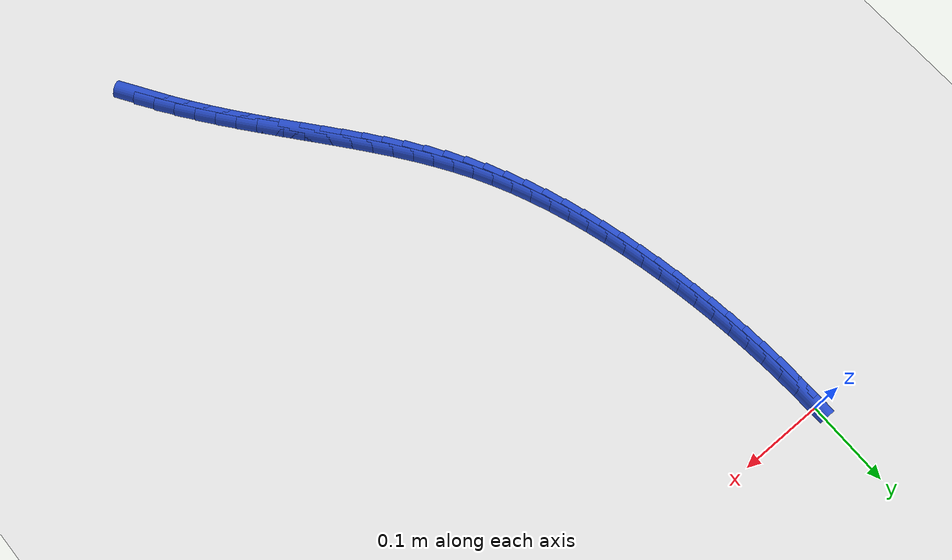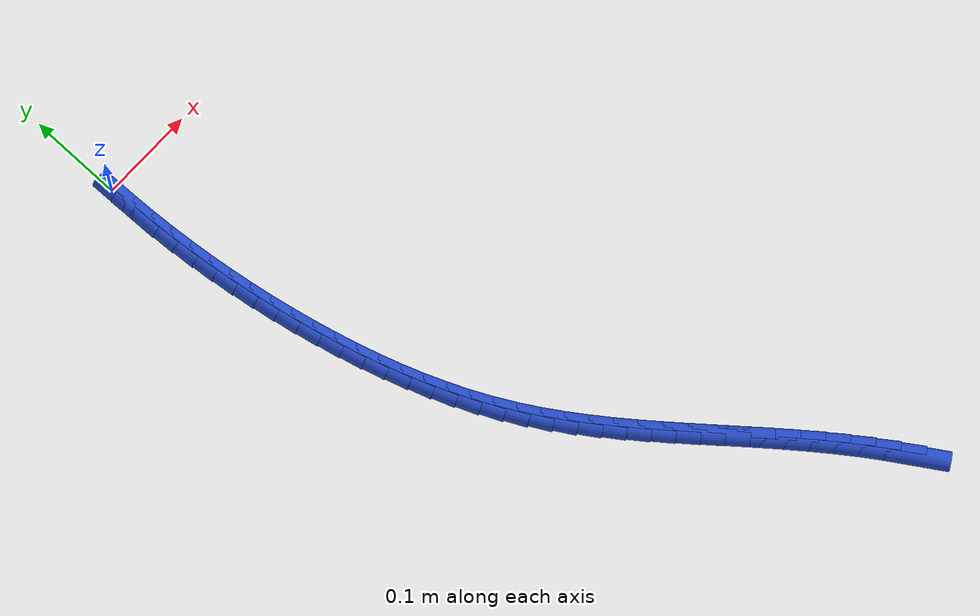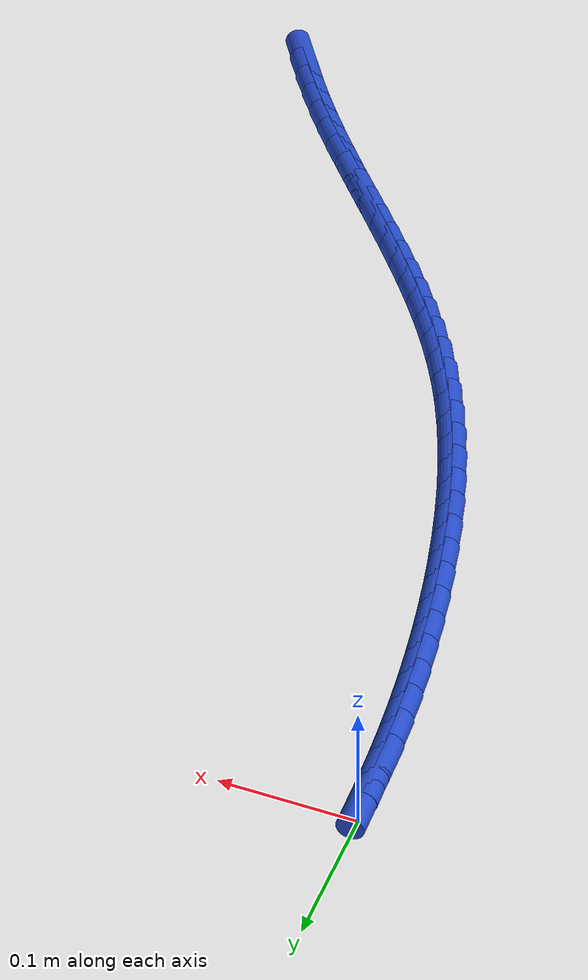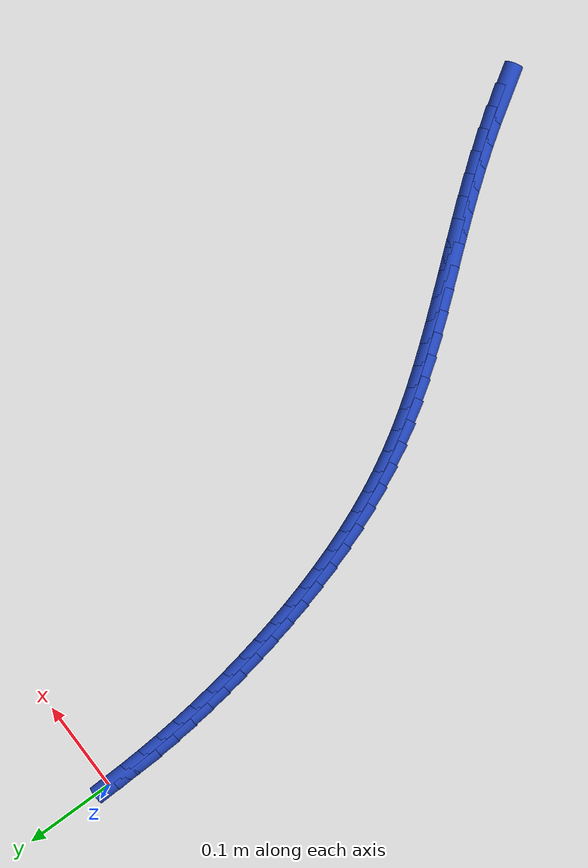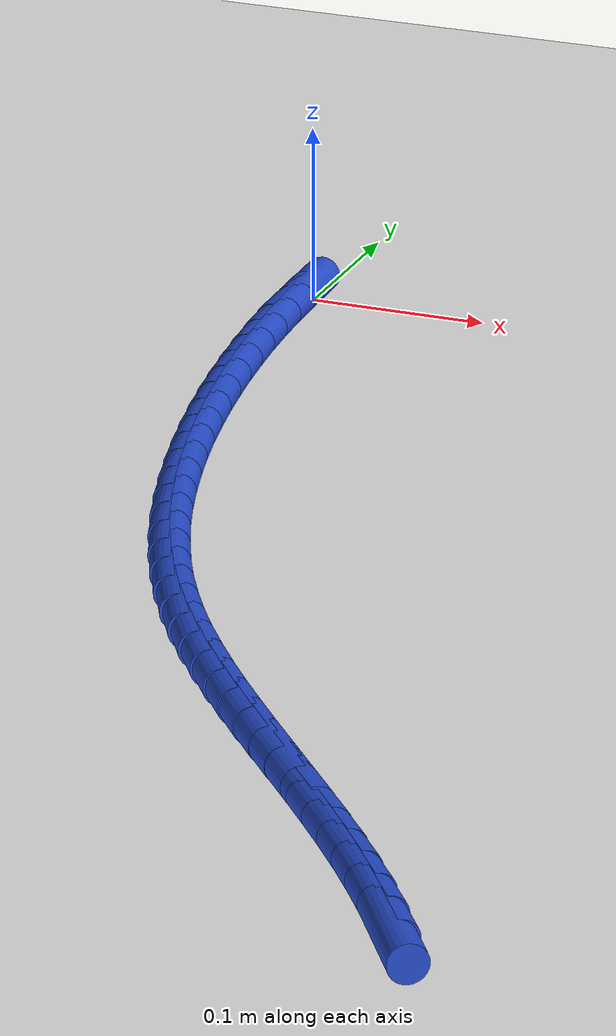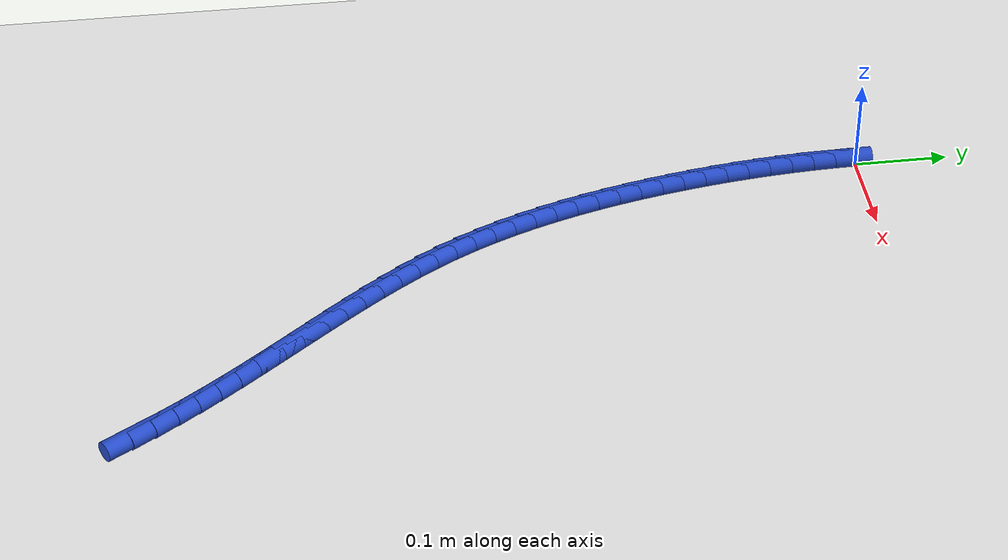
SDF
<sdf version="1.6">
 <world name="default">
  <model name="ground_plane">
   <static>1</static>
   <link name="link">
    <collision name="collision">
     <geometry><plane><normal>0 0 1</normal><size>100 100</size></plane></geometry>
     <surface><friction><ode><mu>100</mu><mu2>50</mu2></ode></friction></surface>
    </collision>
    <visual name="visual">
     <cast_shadows>0</cast_shadows>
     <geometry><plane><normal>0 0 1</normal><size>100 100</size></plane></geometry>
     <material>
      <script><uri>file://media/materials/scripts/gazebo.material</uri><name>Gazebo/WhiteGlow</name></script>
     </material>
    </visual>
   </link>
  </model>
  <model name="line">
   <link name="link_245">
    <pose>0.33461807545409006 -0.753957638538432 0.01 0 1.57 -1.0003960153693385</pose>
    <collision name="collision">
     <geometry><cylinder><radius>0.01</radius><length>0.08</length></cylinder></geometry>
    </collision>
    <visual name="visual">
     <material>
      <script><name>Gazebo/Blue</name><uri>file://media/materials/scripts/gazebo.material</uri></script>
     </material>
     <geometry><cylinder><radius>0.01</radius><length>0.08</length></cylinder></geometry>
    </visual>
   </link>
   <link name="link_246">
    <pose>0.3211450676972649 -0.7329563839854623 0.01 0 1.57 -0.9698250624632055</pose>
    <collision name="collision">
     <geometry><cylinder><radius>0.01</radius><length>0.08</length></cylinder></geometry>
    </collision>
    <visual name="visual">
     <material>
      <script><name>Gazebo/Blue</name><uri>file://media/materials/scripts/gazebo.material</uri></script>
     </material>
     <geometry><cylinder><radius>0.01</radius><length>0.08</length></cylinder></geometry>
    </visual>
   </link>
   <link name="link_247">
    <pose>0.3071308548040017 -0.7125144985209205 0.01 0 1.57 -0.9435868613721403</pose>
    <collision name="collision">
     <geometry><cylinder><radius>0.01</radius><length>0.08</length></cylinder></geometry>
    </collision>
    <visual name="visual">
     <material>
      <script><name>Gazebo/Blue</name><uri>file://media/materials/scripts/gazebo.material</uri></script>
     </material>
     <geometry><cylinder><radius>0.01</radius><length>0.08</length></cylinder></geometry>
    </visual>
   </link>
   <link name="link_248">
    <pose>0.2926652224624972 -0.6925577564326911 0.01 0 1.57 -0.9218202748787302</pose>
    <collision name="collision">
     <geometry><cylinder><radius>0.01</radius><length>0.08</length></cylinder></geometry>
    </collision>
    <visual name="visual">
     <material>
      <script><name>Gazebo/Blue</name><uri>file://media/materials/scripts/gazebo.material</uri></script>
     </material>
     <geometry><cylinder><radius>0.01</radius><length>0.08</length></cylinder></geometry>
    </visual>
   </link>
   <link name="link_249">
    <pose>0.2778379563609487 -0.6730119320086584 0.01 0 1.57 -0.9046267730776741</pose>
    <collision name="collision">
     <geometry><cylinder><radius>0.01</radius><length>0.08</length></cylinder></geometry>
    </collision>
    <visual name="visual">
     <material>
      <script><name>Gazebo/Blue</name><uri>file://media/materials/scripts/gazebo.material</uri></script>
     </material>
     <geometry><cylinder><radius>0.01</radius><length>0.08</length></cylinder></geometry>
    </visual>
   </link>
   <link name="link_250">
    <pose>0.262738842187553 -0.6538027995367072 0.01 0 1.57 -0.8920824447750025</pose>
    <collision name="collision">
     <geometry><cylinder><radius>0.01</radius><length>0.08</length></cylinder></geometry>
    </collision>
    <visual name="visual">
     <material>
      <script><name>Gazebo/Blue</name><uri>file://media/materials/scripts/gazebo.material</uri></script>
     </material>
     <geometry><cylinder><radius>0.01</radius><length>0.08</length></cylinder></geometry>
    </visual>
   </link>
   <link name="link_251">
    <pose>0.24745766563050722 -0.6348561333047213 0.01 0 1.57 -0.8842482742643495</pose>
    <collision name="collision">
     <geometry><cylinder><radius>0.01</radius><length>0.08</length></cylinder></geometry>
    </collision>
    <visual name="visual">
     <material>
      <script><name>Gazebo/Blue</name><uri>file://media/materials/scripts/gazebo.material</uri></script>
     </material>
     <geometry><cylinder><radius>0.01</radius><length>0.08</length></cylinder></geometry>
    </visual>
   </link>
   <link name="link_252">
    <pose>0.232084212378008 -0.6160977076005852 0.01 0 1.57 -0.8811780504047283</pose>
    <collision name="collision">
     <geometry><cylinder><radius>0.01</radius><length>0.08</length></cylinder></geometry>
    </collision>
    <visual name="visual">
     <material>
      <script><name>Gazebo/Blue</name><uri>file://media/materials/scripts/gazebo.material</uri></script>
     </material>
     <geometry><cylinder><radius>0.01</radius><length>0.08</length></cylinder></geometry>
    </visual>
   </link>
   <link name="link_253">
    <pose>0.21670826811825333 -0.5974532967121847 0.01 0 1.57 -0.8829234966853551</pose>
    <collision name="collision">
     <geometry><cylinder><radius>0.01</radius><length>0.08</length></cylinder></geometry>
    </collision>
    <visual name="visual">
     <material>
      <script><name>Gazebo/Blue</name><uri>file://media/materials/scripts/gazebo.material</uri></script>
     </material>
     <geometry><cylinder><radius>0.01</radius><length>0.08</length></cylinder></geometry>
    </visual>
   </link>
   <link name="link_254">
    <pose>0.20141961853943974 -0.5788486749274034 0.01 0 1.57 -0.8895363266488321</pose>
    <collision name="collision">
     <geometry><cylinder><radius>0.01</radius><length>0.08</length></cylinder></geometry>
    </collision>
    <visual name="visual">
     <material>
      <script><name>Gazebo/Blue</name><uri>file://media/materials/scripts/gazebo.material</uri></script>
     </material>
     <geometry><cylinder><radius>0.01</radius><length>0.08</length></cylinder></geometry>
    </visual>
   </link>
   <link name="link_255">
    <pose>0.18630804932976427 -0.5602096165341259 0.01 0 1.57 -0.9010669677642063</pose>
    <collision name="collision">
     <geometry><cylinder><radius>0.01</radius><length>0.08</length></cylinder></geometry>
    </collision>
    <visual name="visual">
     <material>
      <script><name>Gazebo/Blue</name><uri>file://media/materials/scripts/gazebo.material</uri></script>
     </material>
     <geometry><cylinder><radius>0.01</radius><length>0.08</length></cylinder></geometry>
    </visual>
   </link>
   <link name="link_256">
    <pose>0.17146334617742395 -0.5414618958202366 0.01 0 1.57 -0.9175597038424402</pose>
    <collision name="collision">
     <geometry><cylinder><radius>0.01</radius><length>0.08</length></cylinder></geometry>
    </collision>
    <visual name="visual">
     <material>
      <script><name>Gazebo/Blue</name><uri>file://media/materials/scripts/gazebo.material</uri></script>
     </material>
     <geometry><cylinder><radius>0.01</radius><length>0.08</length></cylinder></geometry>
    </visual>
   </link>
   <link name="link_257">
    <pose>0.15697529477061592 -0.5225312870736202 0.01 0 1.57 -0.9390440189941259</pose>
    <collision name="collision">
     <geometry><cylinder><radius>0.01</radius><length>0.08</length></cylinder></geometry>
    </collision>
    <visual name="visual">
     <material>
      <script><name>Gazebo/Blue</name><uri>file://media/materials/scripts/gazebo.material</uri></script>
     </material>
     <geometry><cylinder><radius>0.01</radius><length>0.08</length></cylinder></geometry>
    </visual>
   </link>
   <link name="link_258">
    <pose>0.14293368079753718 -0.5033435645821612 0.01 0 1.57 -0.9655220534444666</pose>
    <collision name="collision">
     <geometry><cylinder><radius>0.01</radius><length>0.08</length></cylinder></geometry>
    </collision>
    <visual name="visual">
     <material>
      <script><name>Gazebo/Blue</name><uri>file://media/materials/scripts/gazebo.material</uri></script>
     </material>
     <geometry><cylinder><radius>0.01</radius><length>0.08</length></cylinder></geometry>
    </visual>
   </link>
   <link name="link_259">
    <pose>0.12942828994638472 -0.4838245026337439 0.01 0 1.57 -0.9969523778217195</pose>
    <collision name="collision">
     <geometry><cylinder><radius>0.01</radius><length>0.08</length></cylinder></geometry>
    </collision>
    <visual name="visual">
     <material>
      <script><name>Gazebo/Blue</name><uri>file://media/materials/scripts/gazebo.material</uri></script>
     </material>
     <geometry><cylinder><radius>0.01</radius><length>0.08</length></cylinder></geometry>
    </visual>
   </link>
   <link name="link_260">
    <pose>0.11654890790535563 -0.463899875516253 0.01 0 1.57 -1.0332308231151857</pose>
    <collision name="collision">
     <geometry><cylinder><radius>0.01</radius><length>0.08</length></cylinder></geometry>
    </collision>
    <visual name="visual">
     <material>
      <script><name>Gazebo/Blue</name><uri>file://media/materials/scripts/gazebo.material</uri></script>
     </material>
     <geometry><cylinder><radius>0.01</radius><length>0.08</length></cylinder></geometry>
    </visual>
   </link>
   <link name="link_261">
    <pose>0.10438532036264661 -0.4434954575175722 0.01 0 1.57 -1.073980365018177</pose>
    <collision name="collision">
     <geometry><cylinder><radius>0.01</radius><length>0.08</length></cylinder></geometry>
    </collision>
    <visual name="visual">
     <material>
      <script><name>Gazebo/Blue</name><uri>file://media/materials/scripts/gazebo.material</uri></script>
     </material>
     <geometry><cylinder><radius>0.01</radius><length>0.08</length></cylinder></geometry>
    </visual>
   </link>
   <link name="link_262">
    <pose>0.09302405843401997 -0.42254049914454456 0.01 0 1.57 -1.1153273637859504</pose>
    <collision name="collision">
     <geometry><cylinder><radius>0.01</radius><length>0.08</length></cylinder></geometry>
    </collision>
    <visual name="visual">
     <material>
      <script><name>Gazebo/Blue</name><uri>file://media/materials/scripts/gazebo.material</uri></script>
     </material>
     <geometry><cylinder><radius>0.01</radius><length>0.08</length></cylinder></geometry>
    </visual>
   </link>
   <link name="link_263">
    <pose>0.08248860618131391 -0.4010315916587103 0.01 0 1.57 -1.1539711878529004</pose>
    <collision name="collision">
     <geometry><cylinder><radius>0.01</radius><length>0.08</length></cylinder></geometry>
    </collision>
    <visual name="visual">
     <material>
      <script><name>Gazebo/Blue</name><uri>file://media/materials/scripts/gazebo.material</uri></script>
     </material>
     <geometry><cylinder><radius>0.01</radius><length>0.08</length></cylinder></geometry>
    </visual>
   </link>
   <link name="link_264">
    <pose>0.07274533689721385 -0.3790263265120552 0.01 0 1.57 -1.189904113366313</pose>
    <collision name="collision">
     <geometry><cylinder><radius>0.01</radius><length>0.08</length></cylinder></geometry>
    </collision>
    <visual name="visual">
     <material>
      <script><name>Gazebo/Blue</name><uri>file://media/materials/scripts/gazebo.material</uri></script>
     </material>
     <geometry><cylinder><radius>0.01</radius><length>0.08</length></cylinder></geometry>
    </visual>
   </link>
   <link name="link_265">
    <pose>0.06375856019965326 -0.35658449937399606 0.01 0 1.57 -1.223252683273554</pose>
    <collision name="collision">
     <geometry><cylinder><radius>0.01</radius><length>0.08</length></cylinder></geometry>
    </collision>
    <visual name="visual">
     <material>
      <script><name>Gazebo/Blue</name><uri>file://media/materials/scripts/gazebo.material</uri></script>
     </material>
     <geometry><cylinder><radius>0.01</radius><length>0.08</length></cylinder></geometry>
    </visual>
   </link>
   <link name="link_266">
    <pose>0.05549258570656563 -0.3337659059139499 0.01 0 1.57 -1.2541501387803813</pose>
    <collision name="collision">
     <geometry><cylinder><radius>0.01</radius><length>0.08</length></cylinder></geometry>
    </collision>
    <visual name="visual">
     <material>
      <script><name>Gazebo/Blue</name><uri>file://media/materials/scripts/gazebo.material</uri></script>
     </material>
     <geometry><cylinder><radius>0.01</radius><length>0.08</length></cylinder></geometry>
    </visual>
   </link>
   <link name="link_267">
    <pose>0.04791172303588439 -0.31063034180133325 0.01 0 1.57 -1.282730690679188</pose>
    <collision name="collision">
     <geometry><cylinder><radius>0.01</radius><length>0.08</length></cylinder></geometry>
    </collision>
    <visual name="visual">
     <material>
      <script><name>Gazebo/Blue</name><uri>file://media/materials/scripts/gazebo.material</uri></script>
     </material>
     <geometry><cylinder><radius>0.01</radius><length>0.08</length></cylinder></geometry>
    </visual>
   </link>
   <link name="link_268">
    <pose>0.04098028180554306 -0.28723760270556337 0.01 0 1.57 -1.3091252074888615</pose>
    <collision name="collision">
     <geometry><cylinder><radius>0.01</radius><length>0.08</length></cylinder></geometry>
    </collision>
    <visual name="visual">
     <material>
      <script><name>Gazebo/Blue</name><uri>file://media/materials/scripts/gazebo.material</uri></script>
     </material>
     <geometry><cylinder><radius>0.01</radius><length>0.08</length></cylinder></geometry>
    </visual>
   </link>
   <link name="link_269">
    <pose>0.03466257163347511 -0.26364748429605694 0.01 0 1.57 -1.333458055683383</pose>
    <collision name="collision">
     <geometry><cylinder><radius>0.01</radius><length>0.08</length></cylinder></geometry>
    </collision>
    <visual name="visual">
     <material>
      <script><name>Gazebo/Blue</name><uri>file://media/materials/scripts/gazebo.material</uri></script>
     </material>
     <geometry><cylinder><radius>0.01</radius><length>0.08</length></cylinder></geometry>
    </visual>
   </link>
   <link name="link_270">
    <pose>0.02892290213761383 -0.23991978224222998 0.01 0 1.57 -1.3558510331695417</pose>
    <collision name="collision">
     <geometry><cylinder><radius>0.01</radius><length>0.08</length></cylinder></geometry>
    </collision>
    <visual name="visual">
     <material>
      <script><name>Gazebo/Blue</name><uri>file://media/materials/scripts/gazebo.material</uri></script>
     </material>
     <geometry><cylinder><radius>0.01</radius><length>0.08</length></cylinder></geometry>
    </visual>
   </link>
   <link name="link_271">
    <pose>0.023725693682673785 -0.21611409114664287 0.01 0 1.57 -1.3770222815167057</pose>
    <collision name="collision">
     <geometry><cylinder><radius>0.01</radius><length>0.08</length></cylinder></geometry>
    </collision>
    <visual name="visual">
     <material>
      <script><name>Gazebo/Blue</name><uri>file://media/materials/scripts/gazebo.material</uri></script>
     </material>
     <geometry><cylinder><radius>0.01</radius><length>0.08</length></cylinder></geometry>
    </visual>
   </link>
   <link name="link_272">
    <pose>0.01904655595795634 -0.1922696907790047 0.01 0 1.57 -1.3981358626919544</pose>
    <collision name="collision">
     <geometry><cylinder><radius>0.01</radius><length>0.08</length></cylinder></geometry>
    </collision>
    <visual name="visual">
     <material>
      <script><name>Gazebo/Blue</name><uri>file://media/materials/scripts/gazebo.material</uri></script>
     </material>
     <geometry><cylinder><radius>0.01</radius><length>0.08</length></cylinder></geometry>
    </visual>
   </link>
   <link name="link_273">
    <pose>0.014881731977751118 -0.1683883999751699 0.01 0 1.57 -1.419291446478115</pose>
    <collision name="collision">
     <geometry><cylinder><radius>0.01</radius><length>0.08</length></cylinder></geometry>
    </collision>
    <visual name="visual">
     <material>
      <script><name>Gazebo/Blue</name><uri>file://media/materials/scripts/gazebo.material</uri></script>
     </material>
     <geometry><cylinder><radius>0.01</radius><length>0.08</length></cylinder></geometry>
    </visual>
   </link>
   <link name="link_274">
    <pose>0.011229689016312203 -0.1444679993049621 0.01 0 1.57 -1.4404638862284818</pose>
    <collision name="collision">
     <geometry><cylinder><radius>0.01</radius><length>0.08</length></cylinder></geometry>
    </collision>
    <visual name="visual">
     <material>
      <script><name>Gazebo/Blue</name><uri>file://media/materials/scripts/gazebo.material</uri></script>
     </material>
     <geometry><cylinder><radius>0.01</radius><length>0.08</length></cylinder></geometry>
    </visual>
   </link>
   <link name="link_275">
    <pose>0.008088894347893684 -0.12050626933820481 0.01 0 1.57 -1.4616278958432358</pose>
    <collision name="collision">
     <geometry><cylinder><radius>0.01</radius><length>0.08</length></cylinder></geometry>
    </collision>
    <visual name="visual">
     <material>
      <script><name>Gazebo/Blue</name><uri>file://media/materials/scripts/gazebo.material</uri></script>
     </material>
     <geometry><cylinder><radius>0.01</radius><length>0.08</length></cylinder></geometry>
    </visual>
   </link>
   <link name="link_276">
    <pose>0.0054578152467496446 -0.09650099064472158 0.01 0 1.57 -1.482758214104256</pose>
    <collision name="collision">
     <geometry><cylinder><radius>0.01</radius><length>0.08</length></cylinder></geometry>
    </collision>
    <visual name="visual">
     <material>
      <script><name>Gazebo/Blue</name><uri>file://media/materials/scripts/gazebo.material</uri></script>
     </material>
     <geometry><cylinder><radius>0.01</radius><length>0.08</length></cylinder></geometry>
    </visual>
   </link>
   <link name="link_277">
    <pose>0.0033349189871341722 -0.07244994379433602 0.01 0 1.57 -1.5038297686094817</pose>
    <collision name="collision">
     <geometry><cylinder><radius>0.01</radius><length>0.08</length></cylinder></geometry>
    </collision>
    <visual name="visual">
     <material>
      <script><name>Gazebo/Blue</name><uri>file://media/materials/scripts/gazebo.material</uri></script>
     </material>
     <geometry><cylinder><radius>0.01</radius><length>0.08</length></cylinder></geometry>
    </visual>
   </link>
   <link name="link_278">
    <pose>0.001718672843301351 -0.04835090935687161 0.01 0 1.57 -1.5248178366577447</pose>
    <collision name="collision">
     <geometry><cylinder><radius>0.01</radius><length>0.08</length></cylinder></geometry>
    </collision>
    <visual name="visual">
     <material>
      <script><name>Gazebo/Blue</name><uri>file://media/materials/scripts/gazebo.material</uri></script>
     </material>
     <geometry><cylinder><radius>0.01</radius><length>0.08</length></cylinder></geometry>
    </visual>
   </link>
   <link name="link_279">
    <pose>0.000607544089505239 -0.02420166790215121 0.01 0 1.57 -1.545698200526584</pose>
    <collision name="collision">
     <geometry><cylinder><radius>0.01</radius><length>0.08</length></cylinder></geometry>
    </collision>
    <visual name="visual">
     <material>
      <script><name>Gazebo/Blue</name><uri>file://media/materials/scripts/gazebo.material</uri></script>
     </material>
     <geometry><cylinder><radius>0.01</radius><length>0.08</length></cylinder></geometry>
    </visual>
   </link>
  </model>
 </world>
</sdf>
